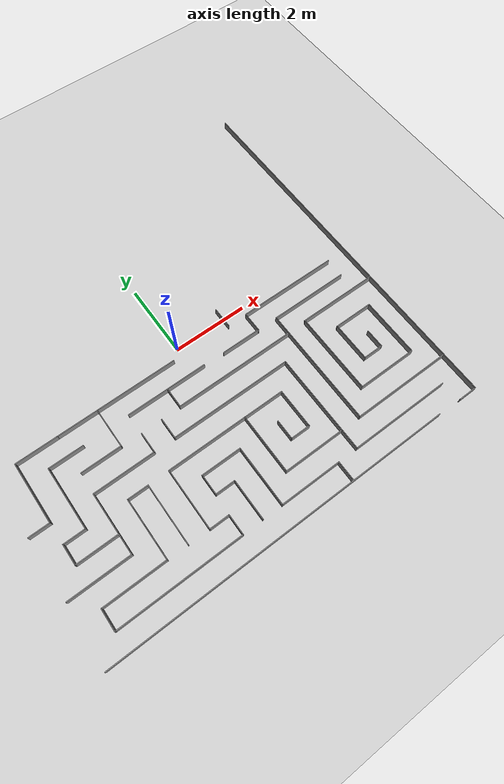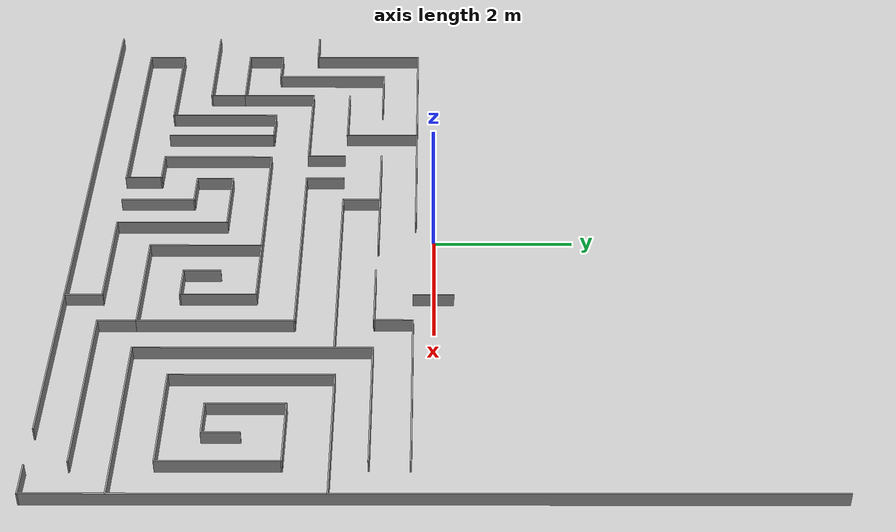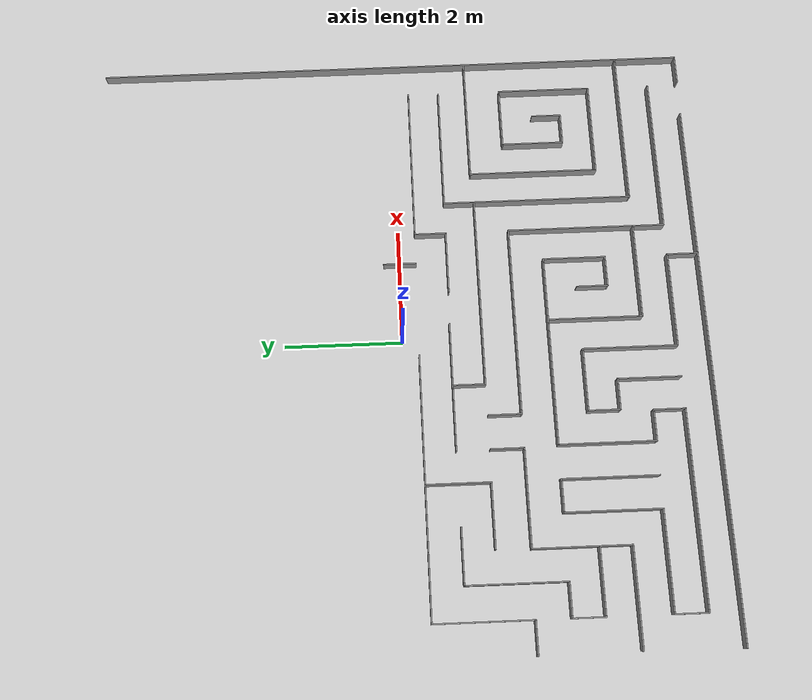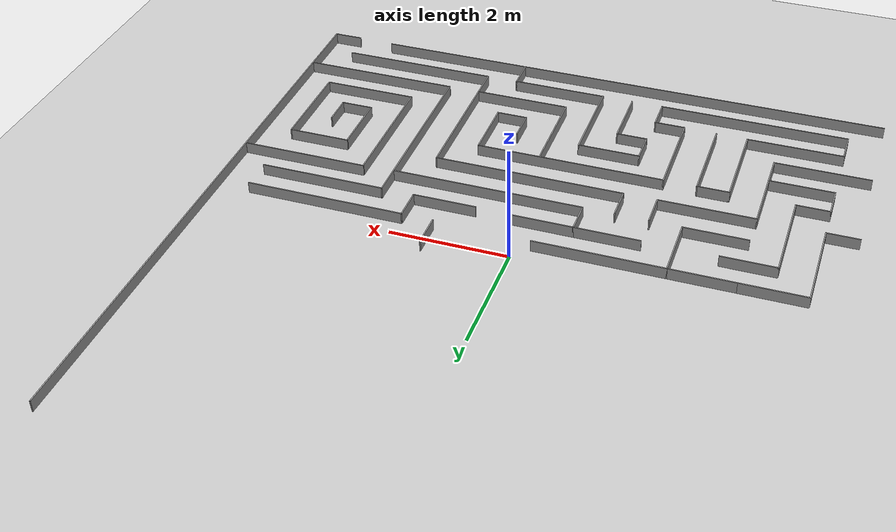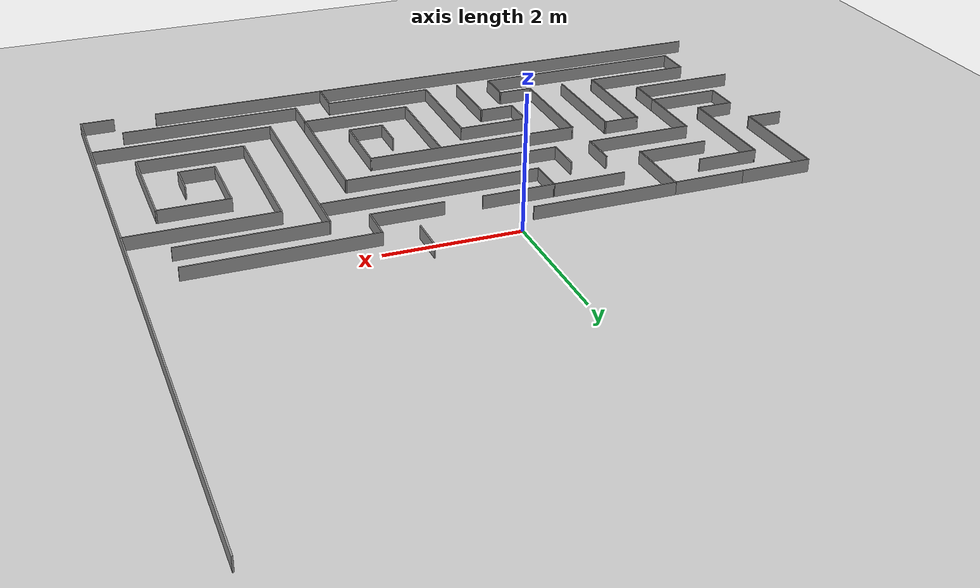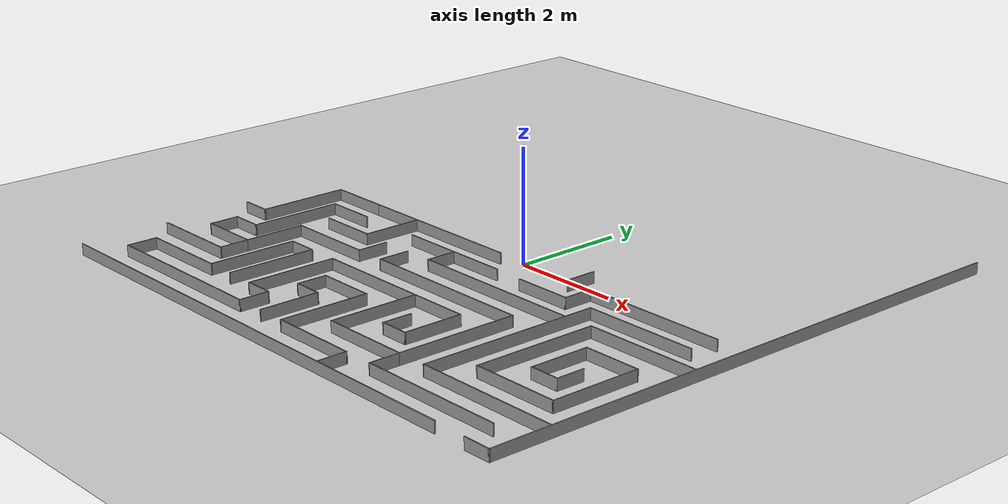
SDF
<sdf version="1.7">
 <world name="default">
  <model name="ground_plane">
   <static>1</static>
   <link name="link">
    <collision name="collision">
     <geometry><plane><normal>0 0 1</normal><size>100 100</size></plane></geometry>
     <surface><friction><ode><mu>100</mu><mu2>50</mu2></ode></friction></surface>
    </collision>
    <visual name="visual">
     <cast_shadows>0</cast_shadows>
     <geometry><plane><normal>0 0 1</normal><size>100 100</size></plane></geometry>
     <material>
      <script><uri>file://media/materials/scripts/gazebo.material</uri><name>Gazebo/Grey</name></script>
     </material>
    </visual>
   </link>
  </model>
  <model name="Maze_V3">
   <pose>-0.002 0.009 0 0 -0 0</pose>
   <link name="Wall_100">
    <collision name="Wall_100_Collision">
     <geometry><box><size>1.084 0.02 0.2</size></box></geometry>
     <pose>0 0 0.1 0 -0 0</pose>
    </collision>
    <visual name="Wall_100_Visual">
     <pose>0 0 0.1 0 -0 0</pose>
     <geometry><box><size>1.084 0.02 0.2</size></box></geometry>
     <material>
      <script><uri>file://media/materials/scripts/gazebo.material</uri><name>Gazebo/Grey</name></script>
      <ambient>1 1 1 1</ambient>
     </material>
     <meta><layer>0</layer></meta>
    </visual>
    <pose>-0.802 -4.088 0 0 -0 1.5708</pose>
   </link>
   <link name="Wall_102">
    <collision name="Wall_102_Collision">
     <geometry><box><size>0.54 0.02 0.2</size></box></geometry>
     <pose>0 0 0.1 0 -0 0</pose>
    </collision>
    <visual name="Wall_102_Visual">
     <pose>0 0 0.1 0 -0 0</pose>
     <geometry><box><size>0.54 0.02 0.2</size></box></geometry>
     <material>
      <script><uri>file://media/materials/scripts/gazebo.material</uri><name>Gazebo/Grey</name></script>
      <ambient>1 1 1 1</ambient>
     </material>
     <meta><layer>0</layer></meta>
    </visual>
    <pose>-1.062 -3.556 0 0 -0 3.14159</pose>
   </link>
   <link name="Wall_104">
    <collision name="Wall_104_Collision">
     <geometry><box><size>0.554 0.02 0.2</size></box></geometry>
     <pose>0 0 0.1 0 -0 0</pose>
    </collision>
    <visual name="Wall_104_Visual">
     <pose>0 0 0.1 0 -0 0</pose>
     <geometry><box><size>0.554 0.02 0.2</size></box></geometry>
     <material>
      <script><uri>file://media/materials/scripts/gazebo.material</uri><name>Gazebo/Grey</name></script>
      <ambient>1 1 1 1</ambient>
     </material>
     <meta><layer>0</layer></meta>
    </visual>
    <pose>-1.322 -3.289 0 0 -0 1.5708</pose>
   </link>
   <link name="Wall_106">
    <collision name="Wall_106_Collision">
     <geometry><box><size>1.079 0.02 0.2</size></box></geometry>
     <pose>0 0 0.1 0 -0 0</pose>
    </collision>
    <visual name="Wall_106_Visual">
     <pose>0 0 0.1 0 -0 0</pose>
     <geometry><box><size>1.079 0.02 0.2</size></box></geometry>
     <material>
      <script><uri>file://media/materials/scripts/gazebo.material</uri><name>Gazebo/Grey</name></script>
      <ambient>1 1 1 1</ambient>
     </material>
     <meta><layer>0</layer></meta>
    </visual>
    <pose>-0.7925 -3.022 0 0 -0 0</pose>
   </link>
   <link name="Wall_108">
    <collision name="Wall_108_Collision">
     <geometry><box><size>1.622 0.02 0.2</size></box></geometry>
     <pose>0 0 0.1 0 -0 0</pose>
    </collision>
    <visual name="Wall_108_Visual">
     <pose>0 0 0.1 0 -0 0</pose>
     <geometry><box><size>1.622 0.02 0.2</size></box></geometry>
     <material>
      <script><uri>file://media/materials/scripts/gazebo.material</uri><name>Gazebo/Grey</name></script>
      <ambient>1 1 1 1</ambient>
     </material>
     <meta><layer>0</layer></meta>
    </visual>
    <pose>-0.263 -3.823 0 0 -0 -1.5708</pose>
   </link>
   <link name="Wall_110">
    <collision name="Wall_110_Collision">
     <geometry><box><size>1.646 0.02 0.2</size></box></geometry>
     <pose>0 0 0.1 0 -0 0</pose>
    </collision>
    <visual name="Wall_110_Visual">
     <pose>0 0 0.1 0 -0 0</pose>
     <geometry><box><size>1.646 0.02 0.2</size></box></geometry>
     <material>
      <script><uri>file://media/materials/scripts/gazebo.material</uri><name>Gazebo/Grey</name></script>
      <ambient>1 1 1 1</ambient>
     </material>
     <meta><layer>0</layer></meta>
    </visual>
    <pose>0.55 -4.624 0 0 -0 0</pose>
   </link>
   <link name="Wall_112">
    <collision name="Wall_112_Collision">
     <geometry><box><size>0.54 0.02 0.2</size></box></geometry>
     <pose>0 0 0.1 0 -0 0</pose>
    </collision>
    <visual name="Wall_112_Visual">
     <pose>0 0 0.1 0 -0 0</pose>
     <geometry><box><size>0.54 0.02 0.2</size></box></geometry>
     <material>
      <script><uri>file://media/materials/scripts/gazebo.material</uri><name>Gazebo/Grey</name></script>
      <ambient>1 1 1 1</ambient>
     </material>
     <meta><layer>0</layer></meta>
    </visual>
    <pose>1.363 -4.884 0 0 -0 -1.5708</pose>
   </link>
   <link name="Wall_114">
    <collision name="Wall_114_Collision">
     <geometry><box><size>1.6199 0.02 0.2</size></box></geometry>
     <pose>0 0 0.1 0 -0 0</pose>
    </collision>
    <visual name="Wall_114_Visual">
     <pose>0 0 0.1 0 -0 0</pose>
     <geometry><box><size>1.6199 0.02 0.2</size></box></geometry>
     <material>
      <script><uri>file://media/materials/scripts/gazebo.material</uri><name>Gazebo/Grey</name></script>
      <ambient>1 1 1 1</ambient>
     </material>
     <meta><layer>0</layer></meta>
    </visual>
    <pose>0.271 -3.282 0 0 -0 -1.5708</pose>
   </link>
   <link name="Wall_116">
    <collision name="Wall_116_Collision">
     <geometry><box><size>1.659 0.02 0.2</size></box></geometry>
     <pose>0 0 0.1 0 -0 0</pose>
    </collision>
    <visual name="Wall_116_Visual">
     <pose>0 0 0.1 0 -0 0</pose>
     <geometry><box><size>1.659 0.02 0.2</size></box></geometry>
     <material>
      <script><uri>file://media/materials/scripts/gazebo.material</uri><name>Gazebo/Grey</name></script>
      <ambient>1 1 1 1</ambient>
     </material>
     <meta><layer>0</layer></meta>
    </visual>
    <pose>1.0905 -4.082 0 0 -0 0</pose>
   </link>
   <link name="Wall_118">
    <collision name="Wall_118_Collision">
     <geometry><box><size>0.559 0.02 0.2</size></box></geometry>
     <pose>0 0 0.1 0 -0 0</pose>
    </collision>
    <visual name="Wall_118_Visual">
     <pose>0 0 0.1 0 -0 0</pose>
     <geometry><box><size>0.559 0.02 0.2</size></box></geometry>
     <material>
      <script><uri>file://media/materials/scripts/gazebo.material</uri><name>Gazebo/Grey</name></script>
      <ambient>1 1 1 1</ambient>
     </material>
     <meta><layer>0</layer></meta>
    </visual>
    <pose>1.91 -4.3515 0 0 -0 -1.5708</pose>
   </link>
   <link name="Wall_120">
    <collision name="Wall_120_Collision">
     <geometry><box><size>2.714 0.02 0.2</size></box></geometry>
     <pose>0 0 0.1 0 -0 0</pose>
    </collision>
    <visual name="Wall_120_Visual">
     <pose>0 0 0.1 0 -0 0</pose>
     <geometry><box><size>2.714 0.02 0.2</size></box></geometry>
     <material>
      <script><uri>file://media/materials/scripts/gazebo.material</uri><name>Gazebo/Grey</name></script>
      <ambient>1 1 1 1</ambient>
     </material>
     <meta><layer>0</layer></meta>
    </visual>
    <pose>3.257 -4.621 0 0 -0 0</pose>
   </link>
   <link name="Wall_122">
    <collision name="Wall_122_Collision">
     <geometry><box><size>2.711 0.02 0.2</size></box></geometry>
     <pose>0 0 0.1 0 -0 0</pose>
    </collision>
    <visual name="Wall_122_Visual">
     <pose>0 0 0.1 0 -0 0</pose>
     <geometry><box><size>2.711 0.02 0.2</size></box></geometry>
     <material>
      <script><uri>file://media/materials/scripts/gazebo.material</uri><name>Gazebo/Grey</name></script>
      <ambient>1 1 1 1</ambient>
     </material>
     <meta><layer>0</layer></meta>
    </visual>
    <pose>3.8075 -4.077 0 0 -0 3.14159</pose>
   </link>
   <link name="Wall_124">
    <collision name="Wall_124_Collision">
     <geometry><box><size>3.26923 0.02 0.2</size></box></geometry>
     <pose>0 0 0.1 0 -0 0</pose>
    </collision>
    <visual name="Wall_124_Visual">
     <pose>0 0 0.1 0 -0 0</pose>
     <geometry><box><size>3.26923 0.02 0.2</size></box></geometry>
     <material>
      <script><uri>file://media/materials/scripts/gazebo.material</uri><name>Gazebo/Grey</name></script>
      <ambient>1 1 1 1</ambient>
     </material>
     <meta><layer>0</layer></meta>
    </visual>
    <pose>2.462 -2.4525 0 0 -0 1.5708</pose>
   </link>
   <link name="Wall_126">
    <collision name="Wall_126_Collision">
     <geometry><box><size>2.14234 0.02 0.2</size></box></geometry>
     <pose>0 0 0.1 0 -0 0</pose>
    </collision>
    <visual name="Wall_126_Visual">
     <pose>0 0 0.1 0 -0 0</pose>
     <geometry><box><size>2.14234 0.02 0.2</size></box></geometry>
     <material>
      <script><uri>file://media/materials/scripts/gazebo.material</uri><name>Gazebo/Grey</name></script>
      <ambient>1 1 1 1</ambient>
     </material>
     <meta><layer>0</layer></meta>
    </visual>
    <pose>3.52317 -0.82789 0 0 -0 0.000103</pose>
   </link>
   <link name="Wall_128">
    <collision name="Wall_128_Collision">
     <geometry><box><size>2.178 0.02 0.2</size></box></geometry>
     <pose>0 0 0.1 0 -0 0</pose>
    </collision>
    <visual name="Wall_128_Visual">
     <pose>0 0 0.1 0 -0 0</pose>
     <geometry><box><size>2.178 0.02 0.2</size></box></geometry>
     <material>
      <script><uri>file://media/materials/scripts/gazebo.material</uri><name>Gazebo/Grey</name></script>
      <ambient>1 1 1 1</ambient>
     </material>
     <meta><layer>0</layer></meta>
    </visual>
    <pose>4.076 -1.319 0 0 -0 3.14159</pose>
   </link>
   <link name="Wall_130">
    <collision name="Wall_130_Collision">
     <geometry><box><size>2.238 0.02 0.2</size></box></geometry>
     <pose>0 0 0.1 0 -0 0</pose>
    </collision>
    <visual name="Wall_130_Visual">
     <pose>0 0 0.1 0 -0 0</pose>
     <geometry><box><size>2.238 0.02 0.2</size></box></geometry>
     <material>
      <script><uri>file://media/materials/scripts/gazebo.material</uri><name>Gazebo/Grey</name></script>
      <ambient>1 1 1 1</ambient>
     </material>
     <meta><layer>0</layer></meta>
    </visual>
    <pose>2.997 -2.428 0 0 -0 -1.5708</pose>
   </link>
   <link name="Wall_132">
    <collision name="Wall_132_Collision">
     <geometry><box><size>1.62 0.02 0.2</size></box></geometry>
     <pose>0 0 0.1 0 -0 0</pose>
    </collision>
    <visual name="Wall_132_Visual">
     <pose>0 0 0.1 0 -0 0</pose>
     <geometry><box><size>1.62 0.02 0.2</size></box></geometry>
     <material>
      <script><uri>file://media/materials/scripts/gazebo.material</uri><name>Gazebo/Grey</name></script>
      <ambient>1 1 1 1</ambient>
     </material>
     <meta><layer>0</layer></meta>
    </visual>
    <pose>3.797 -3.537 0 0 -0 0</pose>
   </link>
   <link name="Wall_134">
    <collision name="Wall_134_Collision">
     <geometry><box><size>1.63 0.02 0.2</size></box></geometry>
     <pose>0 0 0.1 0 -0 0</pose>
    </collision>
    <visual name="Wall_134_Visual">
     <pose>0 0 0.1 0 -0 0</pose>
     <geometry><box><size>1.63 0.02 0.2</size></box></geometry>
     <material>
      <script><uri>file://media/materials/scripts/gazebo.material</uri><name>Gazebo/Grey</name></script>
      <ambient>1 1 1 1</ambient>
     </material>
     <meta><layer>0</layer></meta>
    </visual>
    <pose>4.597 -2.732 0 0 -0 1.5708</pose>
   </link>
   <link name="Wall_136">
    <collision name="Wall_136_Collision">
     <geometry><box><size>1.067 0.02 0.2</size></box></geometry>
     <pose>0 0 0.1 0 -0 0</pose>
    </collision>
    <visual name="Wall_136_Visual">
     <pose>0 0 0.1 0 -0 0</pose>
     <geometry><box><size>1.067 0.02 0.2</size></box></geometry>
     <material>
      <script><uri>file://media/materials/scripts/gazebo.material</uri><name>Gazebo/Grey</name></script>
      <ambient>1 1 1 1</ambient>
     </material>
     <meta><layer>0</layer></meta>
    </visual>
    <pose>4.0735 -1.927 0 0 -0 3.14159</pose>
   </link>
   <link name="Wall_138">
    <collision name="Wall_138_Collision">
     <geometry><box><size>1.086 0.02 0.2</size></box></geometry>
     <pose>0 0 0.1 0 -0 0</pose>
    </collision>
    <visual name="Wall_138_Visual">
     <pose>0 0 0.1 0 -0 0</pose>
     <geometry><box><size>1.086 0.02 0.2</size></box></geometry>
     <material>
      <script><uri>file://media/materials/scripts/gazebo.material</uri><name>Gazebo/Grey</name></script>
      <ambient>1 1 1 1</ambient>
     </material>
     <meta><layer>0</layer></meta>
    </visual>
    <pose>3.55 -2.46 0 0 -0 -1.5708</pose>
   </link>
   <link name="Wall_140">
    <collision name="Wall_140_Collision">
     <geometry><box><size>0.553 0.02 0.2</size></box></geometry>
     <pose>0 0 0.1 0 -0 0</pose>
    </collision>
    <visual name="Wall_140_Visual">
     <pose>0 0 0.1 0 -0 0</pose>
     <geometry><box><size>0.553 0.02 0.2</size></box></geometry>
     <material>
      <script><uri>file://media/materials/scripts/gazebo.material</uri><name>Gazebo/Grey</name></script>
      <ambient>1 1 1 1</ambient>
     </material>
     <meta><layer>0</layer></meta>
    </visual>
    <pose>3.8165 -2.993 0 0 -0 0</pose>
   </link>
   <link name="Wall_142">
    <collision name="Wall_142_Collision">
     <geometry><box><size>0.52 0.02 0.2</size></box></geometry>
     <pose>0 0 0.1 0 -0 0</pose>
    </collision>
    <visual name="Wall_142_Visual">
     <pose>0 0 0.1 0 -0 0</pose>
     <geometry><box><size>0.52 0.02 0.2</size></box></geometry>
     <material>
      <script><uri>file://media/materials/scripts/gazebo.material</uri><name>Gazebo/Grey</name></script>
      <ambient>1 1 1 1</ambient>
     </material>
     <meta><layer>0</layer></meta>
    </visual>
    <pose>4.083 -2.743 0 0 -0 1.5708</pose>
   </link>
   <link name="Wall_144">
    <collision name="Wall_144_Collision">
     <geometry><box><size>2.185 0.02 0.2</size></box></geometry>
     <pose>0 0 0.1 0 -0 0</pose>
    </collision>
    <visual name="Wall_144_Visual">
     <pose>0 0 0.1 0 -0 0</pose>
     <geometry><box><size>2.185 0.02 0.2</size></box></geometry>
     <material>
      <script><uri>file://media/materials/scripts/gazebo.material</uri><name>Gazebo/Grey</name></script>
      <ambient>1 1 1 1</ambient>
     </material>
     <meta><layer>0</layer></meta>
    </visual>
    <pose>1.91 -2.9995 0 0 -0 1.5708</pose>
   </link>
   <link name="Wall_146">
    <collision name="Wall_146_Collision">
     <geometry><box><size>3.263 0.02 0.2</size></box></geometry>
     <pose>0 0 0.1 0 -0 0</pose>
    </collision>
    <visual name="Wall_146_Visual">
     <pose>0 0 0.1 0 -0 0</pose>
     <geometry><box><size>3.263 0.02 0.2</size></box></geometry>
     <material>
      <script><uri>file://media/materials/scripts/gazebo.material</uri><name>Gazebo/Grey</name></script>
      <ambient>1 1 1 1</ambient>
     </material>
     <meta><layer>0</layer></meta>
    </visual>
    <pose>0.2885 -1.917 0 0 -0 3.14159</pose>
   </link>
   <link name="Wall_148">
    <collision name="Wall_148_Collision">
     <geometry><box><size>0.57 0.02 0.2</size></box></geometry>
     <pose>0 0 0.1 0 -0 0</pose>
    </collision>
    <visual name="Wall_148_Visual">
     <pose>0 0 0.1 0 -0 0</pose>
     <geometry><box><size>0.57 0.02 0.2</size></box></geometry>
     <material>
      <script><uri>file://media/materials/scripts/gazebo.material</uri><name>Gazebo/Grey</name></script>
      <ambient>1 1 1 1</ambient>
     </material>
     <meta><layer>0</layer></meta>
    </visual>
    <pose>-1.333 -1.642 0 0 -0 1.5708</pose>
   </link>
   <link name="Wall_150">
    <collision name="Wall_150_Collision">
     <geometry><box><size>1.106 0.02 0.2</size></box></geometry>
     <pose>0 0 0.1 0 -0 0</pose>
    </collision>
    <visual name="Wall_150_Visual">
     <pose>0 0 0.1 0 -0 0</pose>
     <geometry><box><size>1.106 0.02 0.2</size></box></geometry>
     <material>
      <script><uri>file://media/materials/scripts/gazebo.material</uri><name>Gazebo/Grey</name></script>
      <ambient>1 1 1 1</ambient>
     </material>
     <meta><layer>0</layer></meta>
    </visual>
    <pose>-3.522 -2.463 0 0 -0 1.5708</pose>
   </link>
   <link name="Wall_152">
    <collision name="Wall_152_Collision">
     <geometry><box><size>1.644 0.02 0.2</size></box></geometry>
     <pose>0 0 0.1 0 -0 0</pose>
    </collision>
    <visual name="Wall_152_Visual">
     <pose>0 0 0.1 0 -0 0</pose>
     <geometry><box><size>1.644 0.02 0.2</size></box></geometry>
     <material>
      <script><uri>file://media/materials/scripts/gazebo.material</uri><name>Gazebo/Grey</name></script>
      <ambient>1 1 1 1</ambient>
     </material>
     <meta><layer>0</layer></meta>
    </visual>
    <pose>-2.71 -1.92 0 0 -0 0</pose>
   </link>
   <link name="Wall_154">
    <collision name="Wall_154_Collision">
     <geometry><box><size>0.57 0.02 0.2</size></box></geometry>
     <pose>0 0 0.1 0 -0 0</pose>
    </collision>
    <visual name="Wall_154_Visual">
     <pose>0 0 0.1 0 -0 0</pose>
     <geometry><box><size>0.57 0.02 0.2</size></box></geometry>
     <material>
      <script><uri>file://media/materials/scripts/gazebo.material</uri><name>Gazebo/Grey</name></script>
      <ambient>1 1 1 1</ambient>
     </material>
     <meta><layer>0</layer></meta>
    </visual>
    <pose>-1.898 -1.645 0 0 -0 1.5708</pose>
   </link>
   <link name="Wall_156">
    <collision name="Wall_156_Collision">
     <geometry><box><size>1.088 0.02 0.2</size></box></geometry>
     <pose>0 0 0.1 0 -0 0</pose>
    </collision>
    <visual name="Wall_156_Visual">
     <pose>0 0 0.1 0 -0 0</pose>
     <geometry><box><size>1.088 0.02 0.2</size></box></geometry>
     <material>
      <script><uri>file://media/materials/scripts/gazebo.material</uri><name>Gazebo/Grey</name></script>
      <ambient>1 1 1 1</ambient>
     </material>
     <meta><layer>0</layer></meta>
    </visual>
    <pose>-2.971 -1.344 0 0 -0 0</pose>
   </link>
   <link name="Wall_158">
    <collision name="Wall_158_Collision">
     <geometry><box><size>1.093 0.02 0.2</size></box></geometry>
     <pose>0 0 0.1 0 -0 0</pose>
    </collision>
    <visual name="Wall_158_Visual">
     <pose>0 0 0.1 0 -0 0</pose>
     <geometry><box><size>1.093 0.02 0.2</size></box></geometry>
     <material>
      <script><uri>file://media/materials/scripts/gazebo.material</uri><name>Gazebo/Grey</name></script>
      <ambient>1 1 1 1</ambient>
     </material>
     <meta><layer>0</layer></meta>
    </visual>
    <pose>-2.437 -0.8075 0 0 -0 1.5708</pose>
   </link>
   <link name="Wall_16">
    <collision name="Wall_16_Collision">
     <geometry><box><size>9.2 0.02 0.2</size></box></geometry>
     <pose>0 0 0.1 0 -0 0</pose>
    </collision>
    <visual name="Wall_16_Visual">
     <pose>0 0 0.1 0 -0 0</pose>
     <geometry><box><size>9.2 0.02 0.2</size></box></geometry>
     <material>
      <script><uri>file://media/materials/scripts/gazebo.material</uri><name>Gazebo/Grey</name></script>
      <ambient>1 1 1 1</ambient>
     </material>
     <meta><layer>0</layer></meta>
    </visual>
    <pose>-0.573 -5.151 0 0 -0 3.14159</pose>
   </link>
   <link name="Wall_161">
    <collision name="Wall_161_Collision">
     <geometry><box><size>1.097 0.02 0.2</size></box></geometry>
     <pose>0 0 0.1 0 -0 0</pose>
    </collision>
    <visual name="Wall_161_Visual">
     <pose>0 0 0.1 0 -0 0</pose>
     <geometry><box><size>1.097 0.02 0.2</size></box></geometry>
     <material>
      <script><uri>file://media/materials/scripts/gazebo.material</uri><name>Gazebo/Grey</name></script>
      <ambient>1 1 1 1</ambient>
     </material>
     <meta><layer>0</layer></meta>
    </visual>
    <pose>-2.9755 -0.271 0 0 -0 3.14159</pose>
   </link>
   <link name="Wall_163">
    <collision name="Wall_163_Collision">
     <geometry><box><size>2.186 0.02 0.2</size></box></geometry>
     <pose>0 0 0.1 0 -0 0</pose>
    </collision>
    <visual name="Wall_163_Visual">
     <pose>0 0 0.1 0 -0 0</pose>
     <geometry><box><size>2.186 0.02 0.2</size></box></geometry>
     <material>
      <script><uri>file://media/materials/scripts/gazebo.material</uri><name>Gazebo/Grey</name></script>
      <ambient>1 1 1 1</ambient>
     </material>
     <meta><layer>0</layer></meta>
    </visual>
    <pose>-1.354 -0.271 0 0 -0 0</pose>
   </link>
   <link name="Wall_165">
    <collision name="Wall_165_Collision">
     <geometry><box><size>1.113 0.02 0.2</size></box></geometry>
     <pose>0 0 0.1 0 -0 0</pose>
    </collision>
    <visual name="Wall_165_Visual">
     <pose>0 0 0.1 0 -0 0</pose>
     <geometry><box><size>1.113 0.02 0.2</size></box></geometry>
     <material>
      <script><uri>file://media/materials/scripts/gazebo.material</uri><name>Gazebo/Grey</name></script>
      <ambient>1 1 1 1</ambient>
     </material>
     <meta><layer>0</layer></meta>
    </visual>
    <pose>-1.3515 -0.806 0 0 -0 0</pose>
   </link>
   <link name="Wall_167">
    <collision name="Wall_167_Collision">
     <geometry><box><size>0.564 0.02 0.2</size></box></geometry>
     <pose>0 0 0.1 0 -0 0</pose>
    </collision>
    <visual name="Wall_167_Visual">
     <pose>0 0 0.1 0 -0 0</pose>
     <geometry><box><size>0.564 0.02 0.2</size></box></geometry>
     <material>
      <script><uri>file://media/materials/scripts/gazebo.material</uri><name>Gazebo/Grey</name></script>
      <ambient>1 1 1 1</ambient>
     </material>
     <meta><layer>0</layer></meta>
    </visual>
    <pose>-0.805 -1.078 0 0 -0 -1.5708</pose>
   </link>
   <link name="Wall_169">
    <collision name="Wall_169_Collision">
     <geometry><box><size>3.269 0.02 0.2</size></box></geometry>
     <pose>0 0 0.1 0 -0 0</pose>
    </collision>
    <visual name="Wall_169_Visual">
     <pose>0 0 0.1 0 -0 0</pose>
     <geometry><box><size>3.269 0.02 0.2</size></box></geometry>
     <material>
      <script><uri>file://media/materials/scripts/gazebo.material</uri><name>Gazebo/Grey</name></script>
      <ambient>1 1 1 1</ambient>
     </material>
     <meta><layer>0</layer></meta>
    </visual>
    <pose>0.8195 -1.35 0 0 -0 0</pose>
   </link>
   <link name="Wall_171">
    <collision name="Wall_171_Collision">
     <geometry><box><size>1.091 0.02 0.2</size></box></geometry>
     <pose>0 0 0.1 0 -0 0</pose>
    </collision>
    <visual name="Wall_171_Visual">
     <pose>0 0 0.1 0 -0 0</pose>
     <geometry><box><size>1.091 0.02 0.2</size></box></geometry>
     <material>
      <script><uri>file://media/materials/scripts/gazebo.material</uri><name>Gazebo/Grey</name></script>
      <ambient>1 1 1 1</ambient>
     </material>
     <meta><layer>0</layer></meta>
    </visual>
    <pose>-0.2695 -0.806 0 0 -0 0</pose>
   </link>
   <link name="Wall_175">
    <collision name="Wall_175_Collision">
     <geometry><box><size>1.083 0.02 0.2</size></box></geometry>
     <pose>0 0 0.1 0 -0 0</pose>
    </collision>
    <visual name="Wall_175_Visual">
     <pose>0 0 0.1 0 -0 0</pose>
     <geometry><box><size>1.083 0.02 0.2</size></box></geometry>
     <material>
      <script><uri>file://media/materials/scripts/gazebo.material</uri><name>Gazebo/Grey</name></script>
      <ambient>1 1 1 1</ambient>
     </material>
     <meta><layer>0</layer></meta>
    </visual>
    <pose>1.3705 -0.826 0 0 -0 0</pose>
   </link>
   <link name="Wall_177">
    <collision name="Wall_177_Collision">
     <geometry><box><size>0.554 0.02 0.2</size></box></geometry>
     <pose>0 0 0.1 0 -0 0</pose>
    </collision>
    <visual name="Wall_177_Visual">
     <pose>0 0 0.1 0 -0 0</pose>
     <geometry><box><size>0.554 0.02 0.2</size></box></geometry>
     <material>
      <script><uri>file://media/materials/scripts/gazebo.material</uri><name>Gazebo/Grey</name></script>
      <ambient>1 1 1 1</ambient>
     </material>
     <meta><layer>0</layer></meta>
    </visual>
    <pose>1.902 -0.559 0 0 -0 1.5708</pose>
   </link>
   <link name="Wall_179">
    <collision name="Wall_179_Collision">
     <geometry><box><size>2.714 0.02 0.2</size></box></geometry>
     <pose>0 0 0.1 0 -0 0</pose>
    </collision>
    <visual name="Wall_179_Visual">
     <pose>0 0 0.1 0 -0 0</pose>
     <geometry><box><size>2.714 0.02 0.2</size></box></geometry>
     <material>
      <script><uri>file://media/materials/scripts/gazebo.material</uri><name>Gazebo/Grey</name></script>
      <ambient>1 1 1 1</ambient>
     </material>
     <meta><layer>0</layer></meta>
    </visual>
    <pose>3.249 -0.292 0 0 -0 0</pose>
   </link>
   <link name="Wall_233">
    <collision name="Wall_233_Collision">
     <geometry><box><size>0.572 0.02 0.2</size></box></geometry>
     <pose>0 0 0.1 0 -0 0</pose>
    </collision>
    <visual name="Wall_233_Visual">
     <pose>0 0 0.1 0 -0 0</pose>
     <geometry><box><size>0.572 0.02 0.2</size></box></geometry>
     <material>
      <script><uri>file://media/materials/scripts/gazebo.material</uri><name>Gazebo/Grey</name></script>
      <ambient>1 1 1 1</ambient>
     </material>
     <meta><layer>0</layer></meta>
    </visual>
    <pose>1.37 -0.011 0 0 -0 -1.5708</pose>
   </link>
   <link name="Wall_24">
    <collision name="Wall_24_Collision">
     <geometry><box><size>10.36 0.02 0.2</size></box></geometry>
     <pose>0 0 0.1 0 -0 0</pose>
    </collision>
    <visual name="Wall_24_Visual">
     <pose>0 0 0.1 0 -0 0</pose>
     <geometry><box><size>10.36 0.02 0.2</size></box></geometry>
     <material>
      <script><uri>file://media/materials/scripts/gazebo.material</uri><name>Gazebo/Grey</name></script>
      <ambient>1 1 1 1</ambient>
     </material>
     <meta><layer>0</layer></meta>
    </visual>
    <pose>5.163 0 0 0 -0 -1.5708</pose>
   </link>
   <link name="Wall_26">
    <collision name="Wall_26_Collision">
     <geometry><box><size>0.51 0.02 0.2</size></box></geometry>
     <pose>0 0 0.1 0 -0 0</pose>
    </collision>
    <visual name="Wall_26_Visual">
     <pose>0 0 0.1 0 -0 0</pose>
     <geometry><box><size>0.51 0.02 0.2</size></box></geometry>
     <material>
      <script><uri>file://media/materials/scripts/gazebo.material</uri><name>Gazebo/Grey</name></script>
      <ambient>1 1 1 1</ambient>
     </material>
     <meta><layer>0</layer></meta>
    </visual>
    <pose>4.918 -5.17 0 0 -0 3.14159</pose>
   </link>
   <link name="Wall_47">
    <collision name="Wall_47_Collision">
     <geometry><box><size>1.12 0.02 0.2</size></box></geometry>
     <pose>0 0 0.1 0 -0 0</pose>
    </collision>
    <visual name="Wall_47_Visual">
     <pose>0 0 0.1 0 -0 0</pose>
     <geometry><box><size>1.12 0.02 0.2</size></box></geometry>
     <material>
      <script><uri>file://media/materials/scripts/gazebo.material</uri><name>Gazebo/Grey</name></script>
      <ambient>1 1 1 1</ambient>
     </material>
     <meta><layer>0</layer></meta>
    </visual>
    <pose>-4.064 -0.271 0 0 -0 3.14159</pose>
   </link>
   <link name="Wall_49">
    <collision name="Wall_49_Collision">
     <geometry><box><size>1.65 0.02 0.2</size></box></geometry>
     <pose>0 0 0.1 0 -0 0</pose>
    </collision>
    <visual name="Wall_49_Visual">
     <pose>0 0 0.1 0 -0 0</pose>
     <geometry><box><size>1.65 0.02 0.2</size></box></geometry>
     <material>
      <script><uri>file://media/materials/scripts/gazebo.material</uri><name>Gazebo/Grey</name></script>
      <ambient>1 1 1 1</ambient>
     </material>
     <meta><layer>0</layer></meta>
    </visual>
    <pose>-4.614 -1.086 0 0 -0 -1.5708</pose>
   </link>
   <link name="Wall_51">
    <collision name="Wall_51_Collision">
     <geometry><box><size>0.56 0.02 0.2</size></box></geometry>
     <pose>0 0 0.1 0 -0 0</pose>
    </collision>
    <visual name="Wall_51_Visual">
     <pose>0 0 0.1 0 -0 0</pose>
     <geometry><box><size>0.56 0.02 0.2</size></box></geometry>
     <material>
      <script><uri>file://media/materials/scripts/gazebo.material</uri><name>Gazebo/Grey</name></script>
      <ambient>1 1 1 1</ambient>
     </material>
     <meta><layer>0</layer></meta>
    </visual>
    <pose>-4.884 -1.901 0 0 -0 3.14159</pose>
   </link>
   <link name="Wall_59">
    <collision name="Wall_59_Collision">
     <geometry><box><size>0.93 0.02 0.2</size></box></geometry>
     <pose>0 0 0.1 0 -0 0</pose>
    </collision>
    <visual name="Wall_59_Visual">
     <pose>0 0 0.1 0 -0 0</pose>
     <geometry><box><size>0.93 0.02 0.2</size></box></geometry>
     <material>
      <script><uri>file://media/materials/scripts/gazebo.material</uri><name>Gazebo/Grey</name></script>
      <ambient>1 1 1 1</ambient>
     </material>
     <meta><layer>0</layer></meta>
    </visual>
    <pose>-3.596 -0.815 0 0 -0 3.14159</pose>
   </link>
   <link name="Wall_61">
    <collision name="Wall_61_Collision">
     <geometry><box><size>1.681 0.02 0.2</size></box></geometry>
     <pose>0 0 0.1 0 -0 0</pose>
    </collision>
    <visual name="Wall_61_Visual">
     <pose>0 0 0.1 0 -0 0</pose>
     <geometry><box><size>1.681 0.02 0.2</size></box></geometry>
     <material>
      <script><uri>file://media/materials/scripts/gazebo.material</uri><name>Gazebo/Grey</name></script>
      <ambient>1 1 1 1</ambient>
     </material>
     <meta><layer>0</layer></meta>
    </visual>
    <pose>-4.051 -1.6455 0 0 -0 -1.5708</pose>
   </link>
   <link name="Wall_63">
    <collision name="Wall_63_Collision">
     <geometry><box><size>0.582 0.02 0.2</size></box></geometry>
     <pose>0 0 0.1 0 -0 0</pose>
    </collision>
    <visual name="Wall_63_Visual">
     <pose>0 0 0.1 0 -0 0</pose>
     <geometry><box><size>0.582 0.02 0.2</size></box></geometry>
     <material>
      <script><uri>file://media/materials/scripts/gazebo.material</uri><name>Gazebo/Grey</name></script>
      <ambient>1 1 1 1</ambient>
     </material>
     <meta><layer>0</layer></meta>
    </visual>
    <pose>-4.332 -2.476 0 0 -0 3.14159</pose>
   </link>
   <link name="Wall_65">
    <collision name="Wall_65_Collision">
     <geometry><box><size>0.55 0.02 0.2</size></box></geometry>
     <pose>0 0 0.1 0 -0 0</pose>
    </collision>
    <visual name="Wall_65_Visual">
     <pose>0 0 0.1 0 -0 0</pose>
     <geometry><box><size>0.55 0.02 0.2</size></box></geometry>
     <material>
      <script><uri>file://media/materials/scripts/gazebo.material</uri><name>Gazebo/Grey</name></script>
      <ambient>1 1 1 1</ambient>
     </material>
     <meta><layer>0</layer></meta>
    </visual>
    <pose>-4.613 -2.741 0 0 -0 -1.5708</pose>
   </link>
   <link name="Wall_67">
    <collision name="Wall_67_Collision">
     <geometry><box><size>1.111 0.02 0.2</size></box></geometry>
     <pose>0 0 0.1 0 -0 0</pose>
    </collision>
    <visual name="Wall_67_Visual">
     <pose>0 0 0.1 0 -0 0</pose>
     <geometry><box><size>1.111 0.02 0.2</size></box></geometry>
     <material>
      <script><uri>file://media/materials/scripts/gazebo.material</uri><name>Gazebo/Grey</name></script>
      <ambient>1 1 1 1</ambient>
     </material>
     <meta><layer>0</layer></meta>
    </visual>
    <pose>-4.0675 -3.006 0 0 -0 0</pose>
   </link>
   <link name="Wall_69">
    <collision name="Wall_69_Collision">
     <geometry><box><size>0.552 0.02 0.2</size></box></geometry>
     <pose>0 0 0.1 0 -0 0</pose>
    </collision>
    <visual name="Wall_69_Visual">
     <pose>0 0 0.1 0 -0 0</pose>
     <geometry><box><size>0.552 0.02 0.2</size></box></geometry>
     <material>
      <script><uri>file://media/materials/scripts/gazebo.material</uri><name>Gazebo/Grey</name></script>
      <ambient>1 1 1 1</ambient>
     </material>
     <meta><layer>0</layer></meta>
    </visual>
    <pose>-3.522 -3.272 0 0 -0 -1.5708</pose>
   </link>
   <link name="Wall_71">
    <collision name="Wall_71_Collision">
     <geometry><box><size>1.64 0.02 0.2</size></box></geometry>
     <pose>0 0 0.1 0 -0 0</pose>
    </collision>
    <visual name="Wall_71_Visual">
     <pose>0 0 0.1 0 -0 0</pose>
     <geometry><box><size>1.64 0.02 0.2</size></box></geometry>
     <material>
      <script><uri>file://media/materials/scripts/gazebo.material</uri><name>Gazebo/Grey</name></script>
      <ambient>1 1 1 1</ambient>
     </material>
     <meta><layer>0</layer></meta>
    </visual>
    <pose>-4.332 -3.538 0 0 -0 3.14159</pose>
   </link>
   <link name="Wall_74">
    <collision name="Wall_74_Collision">
     <geometry><box><size>1.62031 0.02 0.2</size></box></geometry>
     <pose>0 0 0.1 0 -0 0</pose>
    </collision>
    <visual name="Wall_74_Visual">
     <pose>0 0 0.1 0 -0 0</pose>
     <geometry><box><size>1.62031 0.02 0.2</size></box></geometry>
     <material>
      <script><uri>file://media/materials/scripts/gazebo.material</uri><name>Gazebo/Grey</name></script>
      <ambient>1 1 1 1</ambient>
     </material>
     <meta><layer>0</layer></meta>
    </visual>
    <pose>-2.431 -3.283 0 0 -0 1.5708</pose>
   </link>
   <link name="Wall_76">
    <collision name="Wall_76_Collision">
     <geometry><box><size>0.56 0.02 0.2</size></box></geometry>
     <pose>0 0 0.1 0 -0 0</pose>
    </collision>
    <visual name="Wall_76_Visual">
     <pose>0 0 0.1 0 -0 0</pose>
     <geometry><box><size>0.56 0.02 0.2</size></box></geometry>
     <material>
      <script><uri>file://media/materials/scripts/gazebo.material</uri><name>Gazebo/Grey</name></script>
      <ambient>1 1 1 1</ambient>
     </material>
     <meta><layer>0</layer></meta>
    </visual>
    <pose>-2.701 -2.483 0 0 -0 3.14159</pose>
   </link>
   <link name="Wall_78">
    <collision name="Wall_78_Collision">
     <geometry><box><size>1.62 0.02 0.2</size></box></geometry>
     <pose>0 0 0.1 0 -0 0</pose>
    </collision>
    <visual name="Wall_78_Visual">
     <pose>0 0 0.1 0 -0 0</pose>
     <geometry><box><size>1.62 0.02 0.2</size></box></geometry>
     <material>
      <script><uri>file://media/materials/scripts/gazebo.material</uri><name>Gazebo/Grey</name></script>
      <ambient>1 1 1 1</ambient>
     </material>
     <meta><layer>0</layer></meta>
    </visual>
    <pose>-2.971 -3.283 0 0 -0 -1.5708</pose>
   </link>
   <link name="Wall_80">
    <collision name="Wall_80_Collision">
     <geometry><box><size>1.663 0.02 0.2</size></box></geometry>
     <pose>0 0 0.1 0 -0 0</pose>
    </collision>
    <visual name="Wall_80_Visual">
     <pose>0 0 0.1 0 -0 0</pose>
     <geometry><box><size>1.663 0.02 0.2</size></box></geometry>
     <material>
      <script><uri>file://media/materials/scripts/gazebo.material</uri><name>Gazebo/Grey</name></script>
      <ambient>1 1 1 1</ambient>
     </material>
     <meta><layer>0</layer></meta>
    </visual>
    <pose>-3.7925 -4.083 0 0 -0 3.14159</pose>
   </link>
   <link name="Wall_82">
    <collision name="Wall_82_Collision">
     <geometry><box><size>0.565 0.02 0.2</size></box></geometry>
     <pose>0 0 0.1 0 -0 0</pose>
    </collision>
    <visual name="Wall_82_Visual">
     <pose>0 0 0.1 0 -0 0</pose>
     <geometry><box><size>0.565 0.02 0.2</size></box></geometry>
     <material>
      <script><uri>file://media/materials/scripts/gazebo.material</uri><name>Gazebo/Grey</name></script>
      <ambient>1 1 1 1</ambient>
     </material>
     <meta><layer>0</layer></meta>
    </visual>
    <pose>-4.614 -4.3555 0 0 -0 -1.5708</pose>
   </link>
   <link name="Wall_84">
    <collision name="Wall_84_Collision">
     <geometry><box><size>3.286 0.02 0.2</size></box></geometry>
     <pose>0 0 0.1 0 -0 0</pose>
    </collision>
    <visual name="Wall_84_Visual">
     <pose>0 0 0.1 0 -0 0</pose>
     <geometry><box><size>3.286 0.02 0.2</size></box></geometry>
     <material>
      <script><uri>file://media/materials/scripts/gazebo.material</uri><name>Gazebo/Grey</name></script>
      <ambient>1 1 1 1</ambient>
     </material>
     <meta><layer>0</layer></meta>
    </visual>
    <pose>-2.981 -4.628 0 0 -0 0</pose>
   </link>
   <link name="Wall_86">
    <collision name="Wall_86_Collision">
     <geometry><box><size>0.547 0.02 0.2</size></box></geometry>
     <pose>0 0 0.1 0 -0 0</pose>
    </collision>
    <visual name="Wall_86_Visual">
     <pose>0 0 0.1 0 -0 0</pose>
     <geometry><box><size>0.547 0.02 0.2</size></box></geometry>
     <material>
      <script><uri>file://media/materials/scripts/gazebo.material</uri><name>Gazebo/Grey</name></script>
      <ambient>1 1 1 1</ambient>
     </material>
     <meta><layer>0</layer></meta>
    </visual>
    <pose>-1.348 -4.3645 0 0 -0 1.5708</pose>
   </link>
   <link name="Wall_88">
    <collision name="Wall_88_Collision">
     <geometry><box><size>0.54 0.02 0.2</size></box></geometry>
     <pose>0 0 0.1 0 -0 0</pose>
    </collision>
    <visual name="Wall_88_Visual">
     <pose>0 0 0.1 0 -0 0</pose>
     <geometry><box><size>0.54 0.02 0.2</size></box></geometry>
     <material>
      <script><uri>file://media/materials/scripts/gazebo.material</uri><name>Gazebo/Grey</name></script>
      <ambient>1 1 1 1</ambient>
     </material>
     <meta><layer>0</layer></meta>
    </visual>
    <pose>-1.608 -4.101 0 0 -0 3.14159</pose>
   </link>
   <link name="Wall_90">
    <collision name="Wall_90_Collision">
     <geometry><box><size>1.64 0.02 0.2</size></box></geometry>
     <pose>0 0 0.1 0 -0 0</pose>
    </collision>
    <visual name="Wall_90_Visual">
     <pose>0 0 0.1 0 -0 0</pose>
     <geometry><box><size>1.64 0.02 0.2</size></box></geometry>
     <material>
      <script><uri>file://media/materials/scripts/gazebo.material</uri><name>Gazebo/Grey</name></script>
      <ambient>1 1 1 1</ambient>
     </material>
     <meta><layer>0</layer></meta>
    </visual>
    <pose>-1.868 -3.291 0 0 -0 1.5708</pose>
   </link>
   <link name="Wall_92">
    <collision name="Wall_92_Collision">
     <geometry><box><size>3.247 0.02 0.2</size></box></geometry>
     <pose>0 0 0.1 0 -0 0</pose>
    </collision>
    <visual name="Wall_92_Visual">
     <pose>0 0 0.1 0 -0 0</pose>
     <geometry><box><size>3.247 0.02 0.2</size></box></geometry>
     <material>
      <script><uri>file://media/materials/scripts/gazebo.material</uri><name>Gazebo/Grey</name></script>
      <ambient>1 1 1 1</ambient>
     </material>
     <meta><layer>0</layer></meta>
    </visual>
    <pose>-0.2545 -2.481 0 0 -0 0</pose>
   </link>
   <link name="Wall_94">
    <collision name="Wall_94_Collision">
     <geometry><box><size>1.083 0.02 0.2</size></box></geometry>
     <pose>0 0 0.1 0 -0 0</pose>
    </collision>
    <visual name="Wall_94_Visual">
     <pose>0 0 0.1 0 -0 0</pose>
     <geometry><box><size>1.083 0.02 0.2</size></box></geometry>
     <material>
      <script><uri>file://media/materials/scripts/gazebo.material</uri><name>Gazebo/Grey</name></script>
      <ambient>1 1 1 1</ambient>
     </material>
     <meta><layer>0</layer></meta>
    </visual>
    <pose>1.359 -3.0125 0 0 -0 -1.5708</pose>
   </link>
   <link name="Wall_96">
    <collision name="Wall_96_Collision">
     <geometry><box><size>0.54 0.02 0.2</size></box></geometry>
     <pose>0 0 0.1 0 -0 0</pose>
    </collision>
    <visual name="Wall_96_Visual">
     <pose>0 0 0.1 0 -0 0</pose>
     <geometry><box><size>0.54 0.02 0.2</size></box></geometry>
     <material>
      <script><uri>file://media/materials/scripts/gazebo.material</uri><name>Gazebo/Grey</name></script>
      <ambient>1 1 1 1</ambient>
     </material>
     <meta><layer>0</layer></meta>
    </visual>
    <pose>1.099 -3.544 0 0 -0 3.14159</pose>
   </link>
   <link name="Wall_98">
    <collision name="Wall_98_Collision">
     <geometry><box><size>0.54 0.02 0.2</size></box></geometry>
     <pose>0 0 0.1 0 -0 0</pose>
    </collision>
    <visual name="Wall_98_Visual">
     <pose>0 0 0.1 0 -0 0</pose>
     <geometry><box><size>0.54 0.02 0.2</size></box></geometry>
     <material>
      <script><uri>file://media/materials/scripts/gazebo.material</uri><name>Gazebo/Grey</name></script>
      <ambient>1 1 1 1</ambient>
     </material>
     <meta><layer>0</layer></meta>
    </visual>
    <pose>0.839 -3.284 0 0 -0 1.5708</pose>
   </link>
   <static>1</static>
  </model>
 </world>
</sdf>
